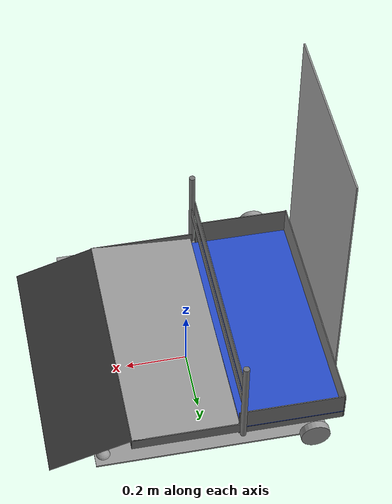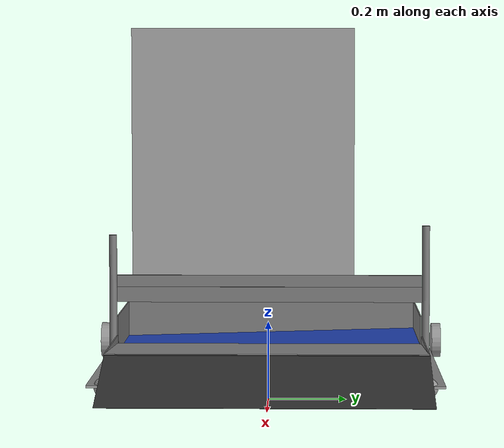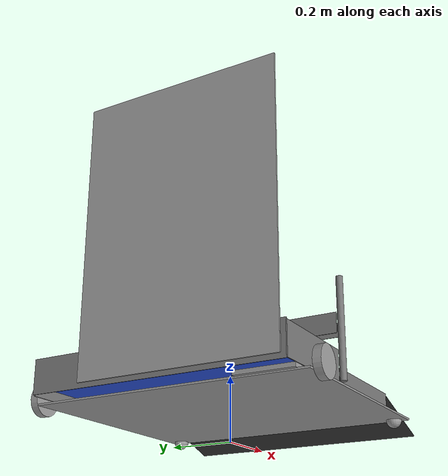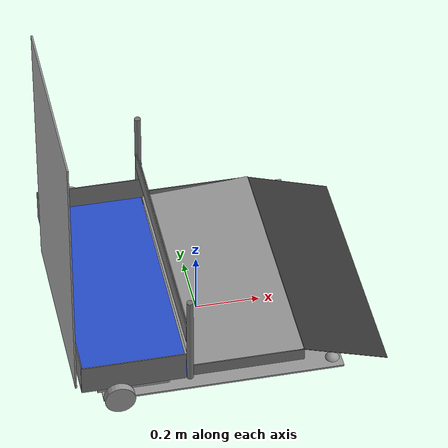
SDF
<?xml version='1.0'?>
<sdf version='1.6'>
  <model name='blue_3'>

    <include>
      <uri>model://frc_blue_scorer</uri>
    </include>

    <plugin name='diff_drive' filename='libFRCBlueDiffDrivePlugin.so'>
      <topic>/blue/joy3</topic>
      <torque>-60</torque>
      <turn_rate>1.0</turn_rate>
      <left_joint>frc2016_blue_scorer::wheel_1_JOINT</left_joint>
      <right_joint>frc2016_blue_scorer::wheel_2_JOINT</right_joint>
    </plugin>

    <plugin name='FRCBlueScorerPlugin' filename='libFRCBlueScorerPlugin.so'>

      <topic>/blue/joy3</topic>
      <joint>
        <name>frc2016_blue_scorer::collector_gate</name>
        <lower_limit>0</lower_limit>
        <upper_limit>0.6</upper_limit>
        <button_index>0</button_index>
        <p_gain>10</p_gain>
        <d_gain>0</d_gain>
      </joint>

      <joint>
        <name>frc2016_blue_scorer::pocket_gate</name>
        <lower_limit>0</lower_limit>
        <upper_limit>0.6</upper_limit>
        <button_index>1</button_index>
        <p_gain>15</p_gain>
        <d_gain>0</d_gain>
      </joint>

      <joint>
        <name>frc2016_blue_scorer::elevator_beam_lift</name>
        <lower_limit>0</lower_limit>
        <upper_limit>1.11</upper_limit>
        <button_index>3</button_index>
        <p_gain>500</p_gain>
        <d_gain>200</d_gain>
      </joint>

      <joint>
        <name>frc2016_blue_scorer::elevator_beam_lift_2</name>
        <lower_limit>0</lower_limit>
        <upper_limit>1.11</upper_limit>
        <button_index>3</button_index>
        <p_gain>400</p_gain>
        <d_gain>200</d_gain>
      </joint>

      <joint>
        <name>frc2016_blue_scorer::elevator_beam_lift_3</name>
        <lower_limit>0</lower_limit>
        <upper_limit>1.11</upper_limit>
        <button_index>3</button_index>
        <p_gain>300</p_gain>
        <d_gain>200</d_gain>
      </joint>

      <joint>
        <name>frc2016_blue_scorer::pocket_slider</name>
        <lower_limit>0</lower_limit>
        <upper_limit>1.05</upper_limit>
        <button_index>2</button_index>
        <p_gain>100</p_gain>
        <d_gain>0</d_gain>
      </joint>

      <joint>
        <name>frc2016_blue_scorer::score_gate</name>
        <lower_limit>0</lower_limit>
        <upper_limit>1.6</upper_limit>
        <button_index>7</button_index>
        <p_gain>10</p_gain>
        <d_gain>0</d_gain>
      </joint>

    </plugin>
  </model>
</sdf>
